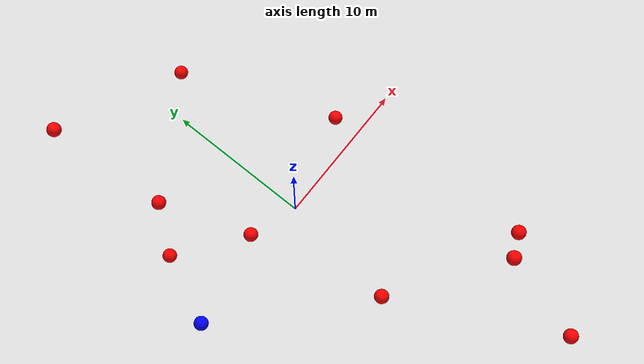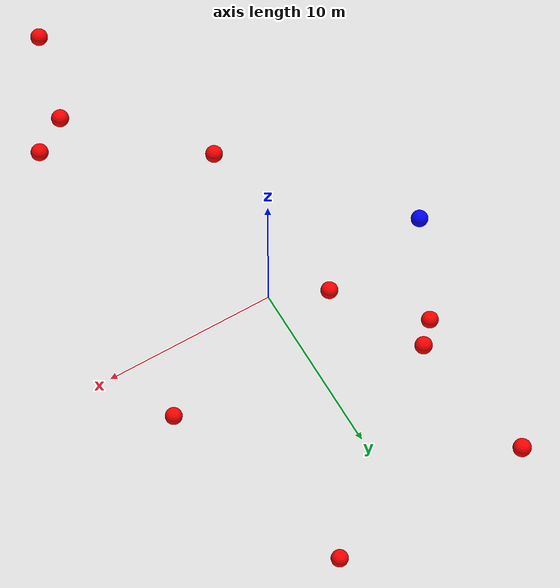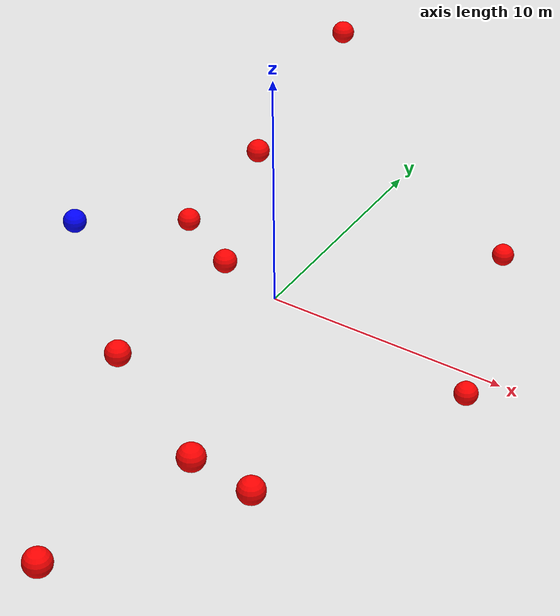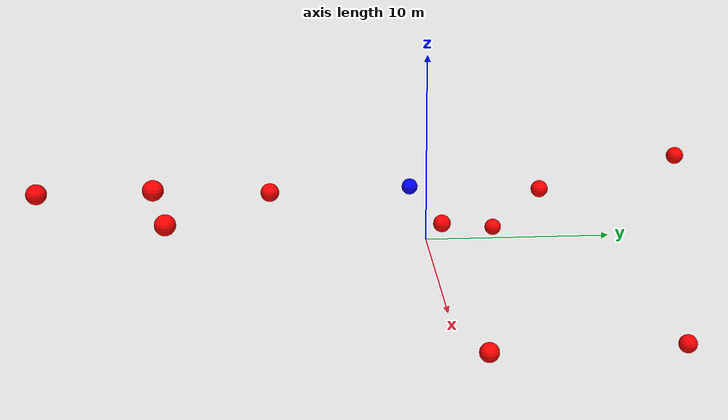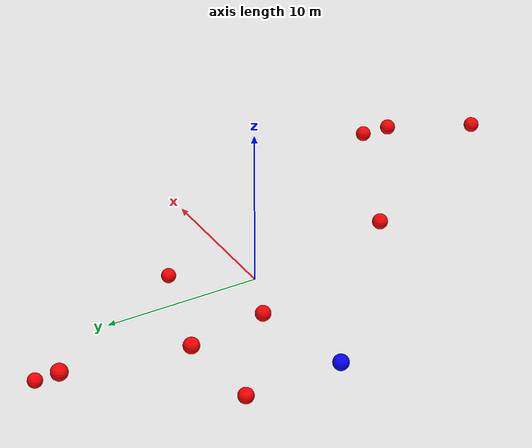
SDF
<?xml version="1.0" ?>
<sdf version="1.8">
    <world name="3d_world">
        <physics name="1ms" type="ode">
            <max_step_size>0.001</max_step_size>
            <real_time_factor>1.0</real_time_factor>
            <real_time_update_rate>1000.0</real_time_update_rate>
        </physics>
        <gravity>0 0 0</gravity>

        <plugin
            filename="gz-sim-physics-system"
            name="gz::sim::v8::systems::Physics">
        </plugin>
        <plugin
            filename="libignition-gazebo-user-commands-system.so"
            name="ignition::gazebo::systems::UserCommands">
        </plugin>
        <plugin
            filename="gz-sim-scene-broadcaster-system"
            name="gz::sim::systems::SceneBroadcaster">
        </plugin>
        <plugin
            filename="gz-sim-sensors-system"
            name="gz::sim::systems::Sensors">
            <render_engine>ogre2</render_engine>
        </plugin>

        <light type="directional" name="sun">
            <cast_shadows>true</cast_shadows>
            <pose>0 0 10 0 0 0</pose>
            <diffuse>0.8 0.8 0.8 1</diffuse>
            <specular>0.2 0.2 0.2 1</specular>
            <attenuation>
                <range>1000</range>
                <constant>0.9</constant>
                <linear>0.01</linear>
                <quadratic>0.001</quadratic>
            </attenuation>
            <direction>-0.5 0.1 -0.9</direction>
        </light>

        <!-- AGENTE -->
        <model name='agente' canonical_link='chassis'>
            <pose relative_to='world'>-10.0 0 0.0 0 0 0</pose>
            <link name='chassis'>
                <pose relative_to='__model__'>0.0 0 0.0 0 0 0</pose>
                <inertial>
                    <mass>1.14395</mass>
                    <inertia>
                        <ixx>0.095329</ixx>
                        <ixy>0</ixy>
                        <ixz>0</ixz>
                        <iyy>0.381317</iyy>
                        <iyz>0</iyz>
                        <izz>0.476646</izz>
                    </inertia>
                </inertial>
                <visual name='visual'>
                    <geometry>
                        <sphere>
                            <radius>0.5</radius>
                        </sphere>
                    </geometry>
                    <material>
                        <ambient>0.0 0.0 1.0 1</ambient>
                        <diffuse>0.0 0.0 1.0 1</diffuse>
                        <specular>0.0 0.0 1.0 1</specular>
                    </material>
                </visual>
                <collision name='collision'>
                    <geometry>
                        <sphere>
                            <radius>0.5</radius>
                        </sphere>
                    </geometry>
                </collision>
                <enable_gravity>false</enable_gravity>
            </link>

            <link name='lidar_link'>
                <pose relative_to='chassis'>0.0 0 0.1 0 0 0</pose>
                <inertial>
                    <mass>0.1</mass>
                    <inertia>
                        <ixx>0.000166667</ixx>
                        <iyy>0.000166667</iyy>
                        <izz>0.000166667</izz>
                    </inertia>
                </inertial>
                <collision name='collision'>
                    <geometry>
                        <cylinder>
                            <radius>0.05</radius>
                            <length>0.1</length>
                        </cylinder>
                    </geometry>
                </collision>
                <visual name='visual'>
                    <geometry>
                        <cylinder>
                            <radius>0.05</radius>
                            <length>0.1</length>
                        </cylinder>
                    </geometry>
                    <material>
                        <ambient>0.0 1.0 0.0 1</ambient>
                        <diffuse>0.0 1.0 0.0 1</diffuse>
                        <specular>0.0 1.0 0.0 1</specular>
                    </material>
                </visual>
                <sensor name="lidar" type="gpu_lidar">
                    <topic>scan</topic>
                    <update_rate>10</update_rate>
                    <lidar>
                        <scan>
                            <horizontal>
                                <samples>5000</samples>
                                <resolution>1</resolution>
                                <min_angle>-3.14159</min_angle>
                                <max_angle>3.14159</max_angle>
                            </horizontal>
                        </scan>
                        <range>
                            <min>0.1</min>
                            <max>10.0</max>
                            <resolution>0.01</resolution>
                        </range>
                    </lidar>
                    <visualize>true</visualize>
                    <always_on>true</always_on>
                    <update_rate>10</update_rate>
                    <pose_frame>lidar</pose_frame>
                </sensor>
                <enable_gravity>false</enable_gravity>
            </link>

            <joint name="lidar_joint" type="fixed">
                <parent>chassis</parent>
                <child>lidar_link</child>
            </joint>

            <plugin
                filename="ignition-gazebo-joint-state-publisher-system"
                name="ignition::gazebo::systems::JointStatePublisher">
            </plugin>
            <plugin
                filename="ignition-gazebo-odometry-publisher-system"
                name="ignition::gazebo::systems::OdometryPublisher">
                <dimensions>3</dimensions>
            </plugin>
            <plugin
                filename="ignition-gazebo-velocity-control-system"
                name="ignition::gazebo::systems::VelocityControl">
                <initial_linear>0.0 0 0</initial_linear>
                <initial_angular>0 0 0.0</initial_angular>
            </plugin>
            <plugin
                filename="libignition-gazebo-pose-publisher-system.so"
                name="ignition::gazebo::systems::PosePublisher">
                <topic>/agente/pose</topic>
                <frame_id>agente</frame_id>
                <update_rate>30</update_rate>
            </plugin>
        </model>

        <!-- OBSTACLE 1 -->
        <model name='obstacle_1' canonical_link='obstacle'>
            <static>false</static>
            <pose relative_to='world'>-3.24 1.26 -0.21 0 0 0</pose>
            <link name='obstacle'>
                <pose relative_to='__model__'>0.0 0 0.0 0 0 0</pose>
                <visual name='visual'>
                    <geometry>
                        <sphere>
                            <radius>0.50</radius>
                        </sphere>
                    </geometry>
                    <material>
                        <ambient>1.0 0.0 0.0 1</ambient>
                        <diffuse>1.0 0.0 0.0 1</diffuse>
                        <specular>1.0 0.0 0.0 1</specular>
                    </material>
                </visual>
                <collision name='collision'>
                    <geometry>
                        <sphere>
                            <radius>0.50</radius>
                        </sphere>
                    </geometry>
                </collision>
                <enable_gravity>false</enable_gravity>
            </link>

            <plugin
                filename="ignition-gazebo-velocity-control-system"
                name="ignition::gazebo::systems::VelocityControl">
                <initial_linear>-0.74 -0.60 0.10</initial_linear>
                <initial_angular>0 0 0</initial_angular>
            </plugin>

            <plugin
                filename="ignition-gazebo-odometry-publisher-system"
                name="ignition::gazebo::systems::OdometryPublisher">
                <dimensions>3</dimensions>
            </plugin>
        </model>

        <!-- OBSTACLE 2 -->
        <model name='obstacle_2' canonical_link='obstacle'>
            <static>false</static>
            <pose relative_to='world'>3.46 13.70 -4.99 0 0 0</pose>
            <link name='obstacle'>
                <pose relative_to='__model__'>0.0 0 0.0 0 0 0</pose>
                <visual name='visual'>
                    <geometry>
                        <sphere>
                            <radius>0.50</radius>
                        </sphere>
                    </geometry>
                    <material>
                        <ambient>1.0 0.0 0.0 1</ambient>
                        <diffuse>1.0 0.0 0.0 1</diffuse>
                        <specular>1.0 0.0 0.0 1</specular>
                    </material>
                </visual>
                <collision name='collision'>
                    <geometry>
                        <sphere>
                            <radius>0.50</radius>
                        </sphere>
                    </geometry>
                </collision>
                <enable_gravity>false</enable_gravity>
            </link>

            <plugin
                filename="ignition-gazebo-velocity-control-system"
                name="ignition::gazebo::systems::VelocityControl">
                <initial_linear>-0.59 -1.80 0.65</initial_linear>
                <initial_angular>0 0 0</initial_angular>
            </plugin>

            <plugin
                filename="ignition-gazebo-odometry-publisher-system"
                name="ignition::gazebo::systems::OdometryPublisher">
                <dimensions>3</dimensions>
            </plugin>
        </model>

        <!-- OBSTACLE 3 -->
        <model name='obstacle_3' canonical_link='obstacle'>
            <static>false</static>
            <pose relative_to='world'>-5.57 7.30 1.03 0 0 0</pose>
            <link name='obstacle'>
                <pose relative_to='__model__'>0.0 0 0.0 0 0 0</pose>
                <visual name='visual'>
                    <geometry>
                        <sphere>
                            <radius>0.50</radius>
                        </sphere>
                    </geometry>
                    <material>
                        <ambient>1.0 0.0 0.0 1</ambient>
                        <diffuse>1.0 0.0 0.0 1</diffuse>
                        <specular>1.0 0.0 0.0 1</specular>
                    </material>
                </visual>
                <collision name='collision'>
                    <geometry>
                        <sphere>
                            <radius>0.50</radius>
                        </sphere>
                    </geometry>
                </collision>
                <enable_gravity>false</enable_gravity>
            </link>

            <plugin
                filename="ignition-gazebo-velocity-control-system"
                name="ignition::gazebo::systems::VelocityControl">
                <initial_linear>0.80 -1.82 -0.26</initial_linear>
                <initial_angular>0 0 0</initial_angular>
            </plugin>

            <plugin
                filename="ignition-gazebo-odometry-publisher-system"
                name="ignition::gazebo::systems::OdometryPublisher">
                <dimensions>3</dimensions>
            </plugin>
        </model>

        <!-- OBSTACLE 4 -->
        <model name='obstacle_4' canonical_link='obstacle'>
            <static>false</static>
            <pose relative_to='world'>7.50 2.36 -3.20 0 0 0</pose>
            <link name='obstacle'>
                <pose relative_to='__model__'>0.0 0 0.0 0 0 0</pose>
                <visual name='visual'>
                    <geometry>
                        <sphere>
                            <radius>0.50</radius>
                        </sphere>
                    </geometry>
                    <material>
                        <ambient>1.0 0.0 0.0 1</ambient>
                        <diffuse>1.0 0.0 0.0 1</diffuse>
                        <specular>1.0 0.0 0.0 1</specular>
                    </material>
                </visual>
                <collision name='collision'>
                    <geometry>
                        <sphere>
                            <radius>0.50</radius>
                        </sphere>
                    </geometry>
                </collision>
                <enable_gravity>false</enable_gravity>
            </link>

            <plugin
                filename="ignition-gazebo-velocity-control-system"
                name="ignition::gazebo::systems::VelocityControl">
                <initial_linear>-0.28 -0.38 0.51</initial_linear>
                <initial_angular>0 0 0</initial_angular>
            </plugin>

            <plugin
                filename="ignition-gazebo-odometry-publisher-system"
                name="ignition::gazebo::systems::OdometryPublisher">
                <dimensions>3</dimensions>
            </plugin>
        </model>

        <!-- OBSTACLE 5 -->
        <model name='obstacle_5' canonical_link='obstacle'>
            <static>false</static>
            <pose relative_to='world'>-6.30 15.58 2.72 0 0 0</pose>
            <link name='obstacle'>
                <pose relative_to='__model__'>0.0 0 0.0 0 0 0</pose>
                <visual name='visual'>
                    <geometry>
                        <sphere>
                            <radius>0.50</radius>
                        </sphere>
                    </geometry>
                    <material>
                        <ambient>1.0 0.0 0.0 1</ambient>
                        <diffuse>1.0 0.0 0.0 1</diffuse>
                        <specular>1.0 0.0 0.0 1</specular>
                    </material>
                </visual>
                <collision name='collision'>
                    <geometry>
                        <sphere>
                            <radius>0.50</radius>
                        </sphere>
                    </geometry>
                </collision>
                <enable_gravity>false</enable_gravity>
            </link>

            <plugin
                filename="ignition-gazebo-velocity-control-system"
                name="ignition::gazebo::systems::VelocityControl">
                <initial_linear>1.02 -1.69 -0.30</initial_linear>
                <initial_angular>0 0 0</initial_angular>
            </plugin>

            <plugin
                filename="ignition-gazebo-odometry-publisher-system"
                name="ignition::gazebo::systems::OdometryPublisher">
                <dimensions>3</dimensions>
            </plugin>
        </model>

        <!-- OBSTACLE 6 -->
        <model name='obstacle_6' canonical_link='obstacle'>
            <static>false</static>
            <pose relative_to='world'>3.94 -19.29 4.14 0 0 0</pose>
            <link name='obstacle'>
                <pose relative_to='__model__'>0.0 0 0.0 0 0 0</pose>
                <visual name='visual'>
                    <geometry>
                        <sphere>
                            <radius>0.50</radius>
                        </sphere>
                    </geometry>
                    <material>
                        <ambient>1.0 0.0 0.0 1</ambient>
                        <diffuse>1.0 0.0 0.0 1</diffuse>
                        <specular>1.0 0.0 0.0 1</specular>
                    </material>
                </visual>
                <collision name='collision'>
                    <geometry>
                        <sphere>
                            <radius>0.50</radius>
                        </sphere>
                    </geometry>
                </collision>
                <enable_gravity>false</enable_gravity>
            </link>

            <plugin
                filename="ignition-gazebo-velocity-control-system"
                name="ignition::gazebo::systems::VelocityControl">
                <initial_linear>0.00 1.96 -0.42</initial_linear>
                <initial_angular>0 0 0</initial_angular>
            </plugin>

            <plugin
                filename="ignition-gazebo-odometry-publisher-system"
                name="ignition::gazebo::systems::OdometryPublisher">
                <dimensions>3</dimensions>
            </plugin>
        </model>

        <!-- OBSTACLE 7 -->
        <model name='obstacle_7' canonical_link='obstacle'>
            <static>false</static>
            <pose relative_to='world'>-1.34 -8.35 2.41 0 0 0</pose>
            <link name='obstacle'>
                <pose relative_to='__model__'>0.0 0 0.0 0 0 0</pose>
                <visual name='visual'>
                    <geometry>
                        <sphere>
                            <radius>0.50</radius>
                        </sphere>
                    </geometry>
                    <material>
                        <ambient>1.0 0.0 0.0 1</ambient>
                        <diffuse>1.0 0.0 0.0 1</diffuse>
                        <specular>1.0 0.0 0.0 1</specular>
                    </material>
                </visual>
                <collision name='collision'>
                    <geometry>
                        <sphere>
                            <radius>0.50</radius>
                        </sphere>
                    </geometry>
                </collision>
                <enable_gravity>false</enable_gravity>
            </link>

            <plugin
                filename="ignition-gazebo-velocity-control-system"
                name="ignition::gazebo::systems::VelocityControl">
                <initial_linear>-0.05 1.92 -0.55</initial_linear>
                <initial_angular>0 0 0</initial_angular>
            </plugin>

            <plugin
                filename="ignition-gazebo-odometry-publisher-system"
                name="ignition::gazebo::systems::OdometryPublisher">
                <dimensions>3</dimensions>
            </plugin>
        </model>

        <!-- OBSTACLE 8 -->
        <model name='obstacle_8' canonical_link='obstacle'>
            <static>false</static>
            <pose relative_to='world'>5.57 -13.47 4.71 0 0 0</pose>
            <link name='obstacle'>
                <pose relative_to='__model__'>0.0 0 0.0 0 0 0</pose>
                <visual name='visual'>
                    <geometry>
                        <sphere>
                            <radius>0.50</radius>
                        </sphere>
                    </geometry>
                    <material>
                        <ambient>1.0 0.0 0.0 1</ambient>
                        <diffuse>1.0 0.0 0.0 1</diffuse>
                        <specular>1.0 0.0 0.0 1</specular>
                    </material>
                </visual>
                <collision name='collision'>
                    <geometry>
                        <sphere>
                            <radius>0.50</radius>
                        </sphere>
                    </geometry>
                </collision>
                <enable_gravity>false</enable_gravity>
            </link>

            <plugin
                filename="ignition-gazebo-velocity-control-system"
                name="ignition::gazebo::systems::VelocityControl">
                <initial_linear>-0.32 1.86 -0.65</initial_linear>
                <initial_angular>0 0 0</initial_angular>
            </plugin>

            <plugin
                filename="ignition-gazebo-odometry-publisher-system"
                name="ignition::gazebo::systems::OdometryPublisher">
                <dimensions>3</dimensions>
            </plugin>
        </model>

        <!-- OBSTACLE 9 -->
        <model name='obstacle_9' canonical_link='obstacle'>
            <static>false</static>
            <pose relative_to='world'>7.36 -12.74 3.59 0 0 0</pose>
            <link name='obstacle'>
                <pose relative_to='__model__'>0.0 0 0.0 0 0 0</pose>
                <visual name='visual'>
                    <geometry>
                        <sphere>
                            <radius>0.50</radius>
                        </sphere>
                    </geometry>
                    <material>
                        <ambient>1.0 0.0 0.0 1</ambient>
                        <diffuse>1.0 0.0 0.0 1</diffuse>
                        <specular>1.0 0.0 0.0 1</specular>
                    </material>
                </visual>
                <collision name='collision'>
                    <geometry>
                        <sphere>
                            <radius>0.50</radius>
                        </sphere>
                    </geometry>
                </collision>
                <enable_gravity>false</enable_gravity>
            </link>

            <plugin
                filename="ignition-gazebo-velocity-control-system"
                name="ignition::gazebo::systems::VelocityControl">
                <initial_linear>-0.89 1.72 -0.49</initial_linear>
                <initial_angular>0 0 0</initial_angular>
            </plugin>

            <plugin
                filename="ignition-gazebo-odometry-publisher-system"
                name="ignition::gazebo::systems::OdometryPublisher">
                <dimensions>3</dimensions>
            </plugin>
        </model>

        <!-- OBSTACLE 10 -->
        <model name='obstacle_10' canonical_link='obstacle'>
            <static>false</static>
            <pose relative_to='world'>-7.71 4.96 -2.02 0 0 0</pose>
            <link name='obstacle'>
                <pose relative_to='__model__'>0.0 0 0.0 0 0 0</pose>
                <visual name='visual'>
                    <geometry>
                        <sphere>
                            <radius>0.50</radius>
                        </sphere>
                    </geometry>
                    <material>
                        <ambient>1.0 0.0 0.0 1</ambient>
                        <diffuse>1.0 0.0 0.0 1</diffuse>
                        <specular>1.0 0.0 0.0 1</specular>
                    </material>
                </visual>
                <collision name='collision'>
                    <geometry>
                        <sphere>
                            <radius>0.50</radius>
                        </sphere>
                    </geometry>
                </collision>
                <enable_gravity>false</enable_gravity>
            </link>

            <plugin
                filename="ignition-gazebo-velocity-control-system"
                name="ignition::gazebo::systems::VelocityControl">
                <initial_linear>1.86 -0.69 0.28</initial_linear>
                <initial_angular>0 0 0</initial_angular>
            </plugin>

            <plugin
                filename="ignition-gazebo-odometry-publisher-system"
                name="ignition::gazebo::systems::OdometryPublisher">
                <dimensions>3</dimensions>
            </plugin>
        </model>

    </world>
</sdf>
